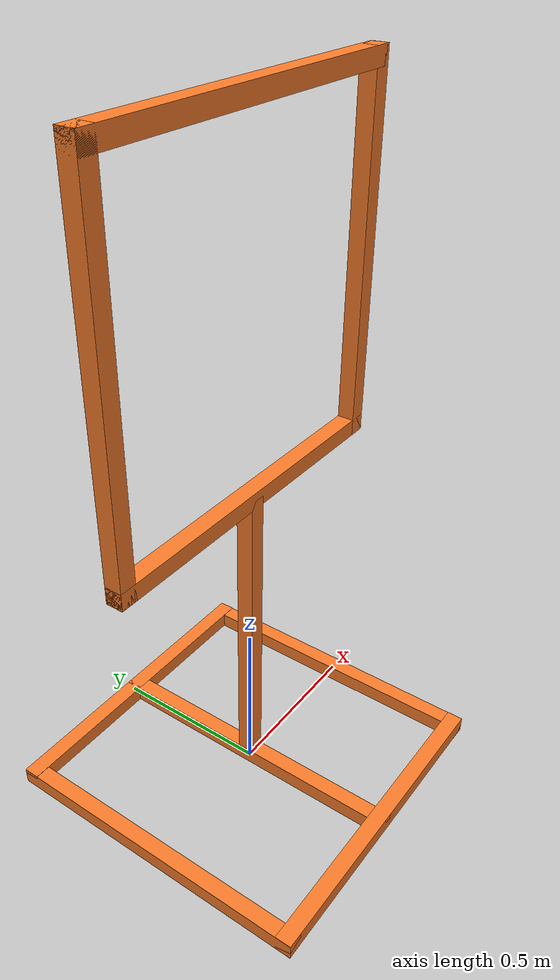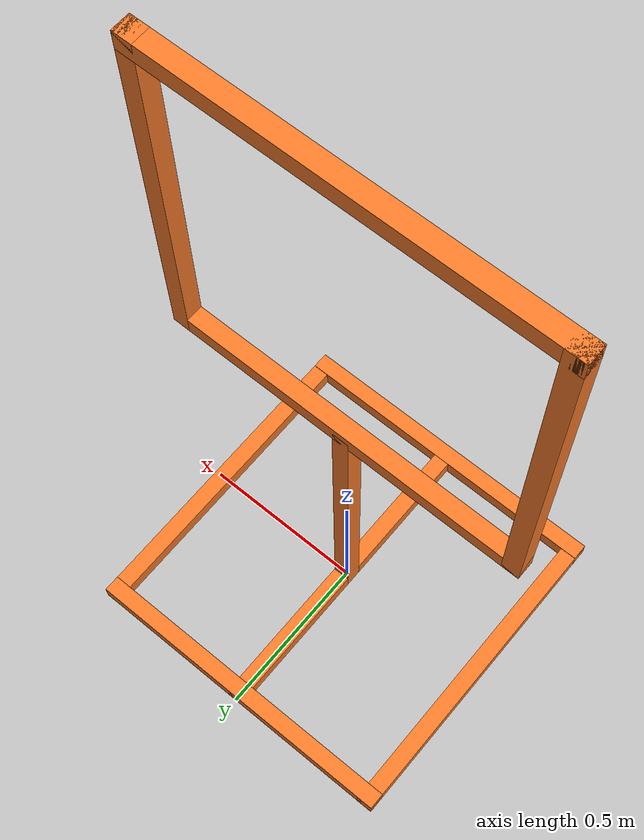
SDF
<?xml version='1.0'?>
<sdf version='1.6'>
  <model name='TMR_Gate'>
    <link name='link'>
      <pose frame=''>0 0 0.5 0 -0 0</pose>
      <inertial>
        <mass>1</mass>
        <inertia>
          <ixx>0.166667</ixx>
          <ixy>0</ixy>
          <ixz>0</ixz>
          <iyy>0.166667</iyy>
          <iyz>0</iyz>
          <izz>0.166667</izz>
        </inertia>
        <pose frame=''>0 0 0 0 -0 0</pose>
      </inertial>
      <self_collide>0</self_collide>
      <kinematic>0</kinematic>
      <gravity>1</gravity>
      <enable_wind>0</enable_wind>
      <visual name='visual'>
        <geometry>
          <box>
            <size>0.05 0.05 1</size>
          </box>
        </geometry>
        <material>
          <script>
            <name>Gazebo/Grey</name>
            <uri>file://media/materials/scripts/gazebo.material</uri>
          </script>
          <shader type='vertex'>
            <normal_map>__default__</normal_map>
          </shader>
          <ambient>0.976 0.484 0.164 1</ambient>
          <diffuse>0.976 0.484 0.164 1</diffuse>
          <specular>0.01 0.01 0.01 1</specular>
          <emissive>0 0 0 1</emissive>
        </material>
        <pose frame=''>0 0 0 0 -0 0</pose>
        <transparency>0</transparency>
        <cast_shadows>1</cast_shadows>
      </visual>
      <collision name='collision'>
        <laser_retro>0</laser_retro>
        <max_contacts>10</max_contacts>
        <pose frame=''>0 0 0 0 -0 0</pose>
        <geometry>
          <box>
            <size>0.05 0.05 1</size>
          </box>
        </geometry>
        <surface>
          <friction>
            <ode>
              <mu>1</mu>
              <mu2>1</mu2>
              <fdir1>0 0 0</fdir1>
              <slip1>0</slip1>
              <slip2>0</slip2>
            </ode>
            <torsional>
              <coefficient>1</coefficient>
              <patch_radius>0</patch_radius>
              <surface_radius>0</surface_radius>
              <use_patch_radius>1</use_patch_radius>
              <ode>
                <slip>0</slip>
              </ode>
            </torsional>
          </friction>
          <bounce>
            <restitution_coefficient>0</restitution_coefficient>
            <threshold>1e+06</threshold>
          </bounce>
          <contact>
            <collide_without_contact>0</collide_without_contact>
            <collide_without_contact_bitmask>1</collide_without_contact_bitmask>
            <collide_bitmask>1</collide_bitmask>
            <ode>
              <soft_cfm>0</soft_cfm>
              <soft_erp>0.2</soft_erp>
              <kp>1e+13</kp>
              <kd>1</kd>
              <max_vel>0.01</max_vel>
              <min_depth>0</min_depth>
            </ode>
            <bullet>
              <split_impulse>1</split_impulse>
              <split_impulse_penetration_threshold>-0.01</split_impulse_penetration_threshold>
              <soft_cfm>0</soft_cfm>
              <soft_erp>0.2</soft_erp>
              <kp>1e+13</kp>
              <kd>1</kd>
            </bullet>
          </contact>
        </surface>
      </collision>
    </link>
    <link name='link_10'>
      <pose frame=''>0.5 0 0.8 0 -0 0</pose>
      <inertial>
        <mass>1</mass>
        <inertia>
          <ixx>0.166667</ixx>
          <ixy>0</ixy>
          <ixz>0</ixz>
          <iyy>0.166667</iyy>
          <iyz>0</iyz>
          <izz>0.166667</izz>
        </inertia>
        <pose frame=''>0 0 0 0 -0 0</pose>
      </inertial>
      <self_collide>0</self_collide>
      <kinematic>0</kinematic>
      <gravity>1</gravity>
      <enable_wind>0</enable_wind>
      <visual name='visual'>
        <geometry>
          <box>
            <size>0.05 0.05 1.05</size>
          </box>
        </geometry>
        <material>
          <script>
            <name>Gazebo/Grey</name>
            <uri>file://media/materials/scripts/gazebo.material</uri>
          </script>
          <shader type='vertex'>
            <normal_map>__default__</normal_map>
          </shader>
          <ambient>0.976 0.484 0.164 1</ambient>
          <diffuse>0.976 0.484 0.164 1</diffuse>
          <specular>0.01 0.01 0.01 1</specular>
          <emissive>0 0 0 1</emissive>
        </material>
        <pose frame=''>0 0 0.7 0 -0 0</pose>
        <transparency>0</transparency>
        <cast_shadows>1</cast_shadows>
      </visual>
      <collision name='collision'>
        <laser_retro>0</laser_retro>
        <max_contacts>10</max_contacts>
        <pose frame=''>0 0 0.7 0 -0 0</pose>
        <geometry>
          <box>
            <size>0.05 0.05 1.05</size>
          </box>
        </geometry>
        <surface>
          <friction>
            <ode>
              <mu>1</mu>
              <mu2>1</mu2>
              <fdir1>0 0 0</fdir1>
              <slip1>0</slip1>
              <slip2>0</slip2>
            </ode>
            <torsional>
              <coefficient>1</coefficient>
              <patch_radius>0</patch_radius>
              <surface_radius>0</surface_radius>
              <use_patch_radius>1</use_patch_radius>
              <ode>
                <slip>0</slip>
              </ode>
            </torsional>
          </friction>
          <bounce>
            <restitution_coefficient>0</restitution_coefficient>
            <threshold>1e+06</threshold>
          </bounce>
          <contact>
            <collide_without_contact>0</collide_without_contact>
            <collide_without_contact_bitmask>1</collide_without_contact_bitmask>
            <collide_bitmask>1</collide_bitmask>
            <ode>
              <soft_cfm>0</soft_cfm>
              <soft_erp>0.2</soft_erp>
              <kp>1e+13</kp>
              <kd>1</kd>
              <max_vel>0.01</max_vel>
              <min_depth>0</min_depth>
            </ode>
            <bullet>
              <split_impulse>1</split_impulse>
              <split_impulse_penetration_threshold>-0.01</split_impulse_penetration_threshold>
              <soft_cfm>0</soft_cfm>
              <soft_erp>0.2</soft_erp>
              <kp>1e+13</kp>
              <kd>1</kd>
            </bullet>
          </contact>
        </surface>
      </collision>
    </link>
    <link name='link_2'>
      <pose frame=''>0 0 0.025 0 -0 0</pose>
      <inertial>
        <mass>1</mass>
        <inertia>
          <ixx>0.166667</ixx>
          <ixy>0</ixy>
          <ixz>0</ixz>
          <iyy>0.166667</iyy>
          <iyz>0</iyz>
          <izz>0.166667</izz>
        </inertia>
        <pose frame=''>0 0 0 0 -0 0</pose>
      </inertial>
      <self_collide>0</self_collide>
      <kinematic>0</kinematic>
      <gravity>1</gravity>
      <enable_wind>0</enable_wind>
      <visual name='visual'>
        <geometry>
          <box>
            <size>0.05 1 0.05</size>
          </box>
        </geometry>
        <material>
          <script>
            <name>Gazebo/Grey</name>
            <uri>file://media/materials/scripts/gazebo.material</uri>
          </script>
          <shader type='vertex'>
            <normal_map>__default__</normal_map>
          </shader>
          <ambient>0.976 0.484 0.164 1</ambient>
          <diffuse>0.976 0.484 0.164 1</diffuse>
          <specular>0.01 0.01 0.01 1</specular>
          <emissive>0 0 0 1</emissive>
        </material>
        <pose frame=''>0 0 0 0 -0 0</pose>
        <transparency>0</transparency>
        <cast_shadows>1</cast_shadows>
      </visual>
      <collision name='collision'>
        <laser_retro>0</laser_retro>
        <max_contacts>10</max_contacts>
        <pose frame=''>0 0 0 0 -0 0</pose>
        <geometry>
          <box>
            <size>0.05 1 0.05</size>
          </box>
        </geometry>
        <surface>
          <friction>
            <ode>
              <mu>1</mu>
              <mu2>1</mu2>
              <fdir1>0 0 0</fdir1>
              <slip1>0</slip1>
              <slip2>0</slip2>
            </ode>
            <torsional>
              <coefficient>1</coefficient>
              <patch_radius>0</patch_radius>
              <surface_radius>0</surface_radius>
              <use_patch_radius>1</use_patch_radius>
              <ode>
                <slip>0</slip>
              </ode>
            </torsional>
          </friction>
          <bounce>
            <restitution_coefficient>0</restitution_coefficient>
            <threshold>1e+06</threshold>
          </bounce>
          <contact>
            <collide_without_contact>0</collide_without_contact>
            <collide_without_contact_bitmask>1</collide_without_contact_bitmask>
            <collide_bitmask>1</collide_bitmask>
            <ode>
              <soft_cfm>0</soft_cfm>
              <soft_erp>0.2</soft_erp>
              <kp>1e+13</kp>
              <kd>1</kd>
              <max_vel>0.01</max_vel>
              <min_depth>0</min_depth>
            </ode>
            <bullet>
              <split_impulse>1</split_impulse>
              <split_impulse_penetration_threshold>-0.01</split_impulse_penetration_threshold>
              <soft_cfm>0</soft_cfm>
              <soft_erp>0.2</soft_erp>
              <kp>1e+13</kp>
              <kd>1</kd>
            </bullet>
          </contact>
        </surface>
      </collision>
    </link>
    <link name='link_3'>
      <pose frame=''>0.475 0 0.024 0 -0 0</pose>
      <inertial>
        <mass>1</mass>
        <inertia>
          <ixx>0.166667</ixx>
          <ixy>0</ixy>
          <ixz>0</ixz>
          <iyy>0.166667</iyy>
          <iyz>0</iyz>
          <izz>0.166667</izz>
        </inertia>
        <pose frame=''>0 0 0 0 -0 0</pose>
      </inertial>
      <self_collide>0</self_collide>
      <kinematic>0</kinematic>
      <gravity>1</gravity>
      <enable_wind>0</enable_wind>
      <visual name='visual'>
        <geometry>
          <box>
            <size>0.05 1 0.05</size>
          </box>
        </geometry>
        <material>
          <script>
            <name>Gazebo/Grey</name>
            <uri>file://media/materials/scripts/gazebo.material</uri>
          </script>
          <shader type='vertex'>
            <normal_map>__default__</normal_map>
          </shader>
          <ambient>0.976 0.484 0.164 1</ambient>
          <diffuse>0.976 0.484 0.164 1</diffuse>
          <specular>0.01 0.01 0.01 1</specular>
          <emissive>0 0 0 1</emissive>
        </material>
        <pose frame=''>0 0 0 0 -0 0</pose>
        <transparency>0</transparency>
        <cast_shadows>1</cast_shadows>
      </visual>
      <collision name='collision'>
        <laser_retro>0</laser_retro>
        <max_contacts>10</max_contacts>
        <pose frame=''>0 0 0 0 -0 0</pose>
        <geometry>
          <box>
            <size>0.05 1 0.05</size>
          </box>
        </geometry>
        <surface>
          <friction>
            <ode>
              <mu>1</mu>
              <mu2>1</mu2>
              <fdir1>0 0 0</fdir1>
              <slip1>0</slip1>
              <slip2>0</slip2>
            </ode>
            <torsional>
              <coefficient>1</coefficient>
              <patch_radius>0</patch_radius>
              <surface_radius>0</surface_radius>
              <use_patch_radius>1</use_patch_radius>
              <ode>
                <slip>0</slip>
              </ode>
            </torsional>
          </friction>
          <bounce>
            <restitution_coefficient>0</restitution_coefficient>
            <threshold>1e+06</threshold>
          </bounce>
          <contact>
            <collide_without_contact>0</collide_without_contact>
            <collide_without_contact_bitmask>1</collide_without_contact_bitmask>
            <collide_bitmask>1</collide_bitmask>
            <ode>
              <soft_cfm>0</soft_cfm>
              <soft_erp>0.2</soft_erp>
              <kp>1e+13</kp>
              <kd>1</kd>
              <max_vel>0.01</max_vel>
              <min_depth>0</min_depth>
            </ode>
            <bullet>
              <split_impulse>1</split_impulse>
              <split_impulse_penetration_threshold>-0.01</split_impulse_penetration_threshold>
              <soft_cfm>0</soft_cfm>
              <soft_erp>0.2</soft_erp>
              <kp>1e+13</kp>
              <kd>1</kd>
            </bullet>
          </contact>
        </surface>
      </collision>
    </link>
    <link name='link_4'>
      <pose frame=''>-0.475 -0 0.024 0 -0 0</pose>
      <inertial>
        <mass>1</mass>
        <inertia>
          <ixx>0.166667</ixx>
          <ixy>0</ixy>
          <ixz>0</ixz>
          <iyy>0.166667</iyy>
          <iyz>0</iyz>
          <izz>0.166667</izz>
        </inertia>
        <pose frame=''>0 0 0 0 -0 0</pose>
      </inertial>
      <self_collide>0</self_collide>
      <kinematic>0</kinematic>
      <gravity>1</gravity>
      <enable_wind>0</enable_wind>
      <visual name='visual'>
        <geometry>
          <box>
            <size>0.05 1 0.05</size>
          </box>
        </geometry>
        <material>
          <script>
            <name>Gazebo/Grey</name>
            <uri>file://media/materials/scripts/gazebo.material</uri>
          </script>
          <shader type='vertex'>
            <normal_map>__default__</normal_map>
          </shader>
          <ambient>0.976 0.484 0.164 1</ambient>
          <diffuse>0.976 0.484 0.164 1</diffuse>
          <specular>0.01 0.01 0.01 1</specular>
          <emissive>0 0 0 1</emissive>
        </material>
        <pose frame=''>0 0 0 0 -0 0</pose>
        <transparency>0</transparency>
        <cast_shadows>1</cast_shadows>
      </visual>
      <collision name='collision'>
        <laser_retro>0</laser_retro>
        <max_contacts>10</max_contacts>
        <pose frame=''>0 0 0 0 -0 0</pose>
        <geometry>
          <box>
            <size>0.05 1 0.05</size>
          </box>
        </geometry>
        <surface>
          <friction>
            <ode>
              <mu>1</mu>
              <mu2>1</mu2>
              <fdir1>0 0 0</fdir1>
              <slip1>0</slip1>
              <slip2>0</slip2>
            </ode>
            <torsional>
              <coefficient>1</coefficient>
              <patch_radius>0</patch_radius>
              <surface_radius>0</surface_radius>
              <use_patch_radius>1</use_patch_radius>
              <ode>
                <slip>0</slip>
              </ode>
            </torsional>
          </friction>
          <bounce>
            <restitution_coefficient>0</restitution_coefficient>
            <threshold>1e+06</threshold>
          </bounce>
          <contact>
            <collide_without_contact>0</collide_without_contact>
            <collide_without_contact_bitmask>1</collide_without_contact_bitmask>
            <collide_bitmask>1</collide_bitmask>
            <ode>
              <soft_cfm>0</soft_cfm>
              <soft_erp>0.2</soft_erp>
              <kp>1e+13</kp>
              <kd>1</kd>
              <max_vel>0.01</max_vel>
              <min_depth>0</min_depth>
            </ode>
            <bullet>
              <split_impulse>1</split_impulse>
              <split_impulse_penetration_threshold>-0.01</split_impulse_penetration_threshold>
              <soft_cfm>0</soft_cfm>
              <soft_erp>0.2</soft_erp>
              <kp>1e+13</kp>
              <kd>1</kd>
            </bullet>
          </contact>
        </surface>
      </collision>
    </link>
    <link name='link_5'>
      <pose frame=''>0 0.475 0.025 0 -0 0</pose>
      <inertial>
        <mass>1</mass>
        <inertia>
          <ixx>0.166667</ixx>
          <ixy>0</ixy>
          <ixz>0</ixz>
          <iyy>0.166667</iyy>
          <iyz>0</iyz>
          <izz>0.166667</izz>
        </inertia>
        <pose frame=''>0 0 0 0 -0 0</pose>
      </inertial>
      <self_collide>0</self_collide>
      <kinematic>0</kinematic>
      <gravity>1</gravity>
      <enable_wind>0</enable_wind>
      <visual name='visual'>
        <geometry>
          <box>
            <size>1 0.05 0.05</size>
          </box>
        </geometry>
        <material>
          <script>
            <name>Gazebo/Grey</name>
            <uri>file://media/materials/scripts/gazebo.material</uri>
          </script>
          <shader type='vertex'>
            <normal_map>__default__</normal_map>
          </shader>
          <ambient>0.976 0.484 0.164 1</ambient>
          <diffuse>0.976 0.484 0.164 1</diffuse>
          <specular>0.01 0.01 0.01 1</specular>
          <emissive>0 0 0 1</emissive>
        </material>
        <pose frame=''>0 0 0 0 -0 0</pose>
        <transparency>0</transparency>
        <cast_shadows>1</cast_shadows>
      </visual>
      <collision name='collision'>
        <laser_retro>0</laser_retro>
        <max_contacts>10</max_contacts>
        <pose frame=''>0 0 0 0 -0 0</pose>
        <geometry>
          <box>
            <size>1 0.05 0.05</size>
          </box>
        </geometry>
        <surface>
          <friction>
            <ode>
              <mu>1</mu>
              <mu2>1</mu2>
              <fdir1>0 0 0</fdir1>
              <slip1>0</slip1>
              <slip2>0</slip2>
            </ode>
            <torsional>
              <coefficient>1</coefficient>
              <patch_radius>0</patch_radius>
              <surface_radius>0</surface_radius>
              <use_patch_radius>1</use_patch_radius>
              <ode>
                <slip>0</slip>
              </ode>
            </torsional>
          </friction>
          <bounce>
            <restitution_coefficient>0</restitution_coefficient>
            <threshold>1e+06</threshold>
          </bounce>
          <contact>
            <collide_without_contact>0</collide_without_contact>
            <collide_without_contact_bitmask>1</collide_without_contact_bitmask>
            <collide_bitmask>1</collide_bitmask>
            <ode>
              <soft_cfm>0</soft_cfm>
              <soft_erp>0.2</soft_erp>
              <kp>1e+13</kp>
              <kd>1</kd>
              <max_vel>0.01</max_vel>
              <min_depth>0</min_depth>
            </ode>
            <bullet>
              <split_impulse>1</split_impulse>
              <split_impulse_penetration_threshold>-0.01</split_impulse_penetration_threshold>
              <soft_cfm>0</soft_cfm>
              <soft_erp>0.2</soft_erp>
              <kp>1e+13</kp>
              <kd>1</kd>
            </bullet>
          </contact>
        </surface>
      </collision>
    </link>
    <link name='link_6'>
      <pose frame=''>-0 -0.475 0.025 0 -0 0</pose>
      <inertial>
        <mass>1</mass>
        <inertia>
          <ixx>0.166667</ixx>
          <ixy>0</ixy>
          <ixz>0</ixz>
          <iyy>0.166667</iyy>
          <iyz>0</iyz>
          <izz>0.166667</izz>
        </inertia>
        <pose frame=''>0 0 0 0 -0 0</pose>
      </inertial>
      <self_collide>0</self_collide>
      <kinematic>0</kinematic>
      <gravity>1</gravity>
      <enable_wind>0</enable_wind>
      <visual name='visual'>
        <geometry>
          <box>
            <size>1 0.05 0.05</size>
          </box>
        </geometry>
        <material>
          <script>
            <name>Gazebo/Grey</name>
            <uri>file://media/materials/scripts/gazebo.material</uri>
          </script>
          <shader type='vertex'>
            <normal_map>__default__</normal_map>
          </shader>
          <ambient>0.976 0.484 0.164 1</ambient>
          <diffuse>0.976 0.484 0.164 1</diffuse>
          <specular>0.01 0.01 0.01 1</specular>
          <emissive>0 0 0 1</emissive>
        </material>
        <pose frame=''>0 0 0 0 -0 0</pose>
        <transparency>0</transparency>
        <cast_shadows>1</cast_shadows>
      </visual>
      <collision name='collision'>
        <laser_retro>0</laser_retro>
        <max_contacts>10</max_contacts>
        <pose frame=''>0 0 0 0 -0 0</pose>
        <geometry>
          <box>
            <size>1 0.05 0.05</size>
          </box>
        </geometry>
        <surface>
          <friction>
            <ode>
              <mu>1</mu>
              <mu2>1</mu2>
              <fdir1>0 0 0</fdir1>
              <slip1>0</slip1>
              <slip2>0</slip2>
            </ode>
            <torsional>
              <coefficient>1</coefficient>
              <patch_radius>0</patch_radius>
              <surface_radius>0</surface_radius>
              <use_patch_radius>1</use_patch_radius>
              <ode>
                <slip>0</slip>
              </ode>
            </torsional>
          </friction>
          <bounce>
            <restitution_coefficient>0</restitution_coefficient>
            <threshold>1e+06</threshold>
          </bounce>
          <contact>
            <collide_without_contact>0</collide_without_contact>
            <collide_without_contact_bitmask>1</collide_without_contact_bitmask>
            <collide_bitmask>1</collide_bitmask>
            <ode>
              <soft_cfm>0</soft_cfm>
              <soft_erp>0.2</soft_erp>
              <kp>1e+13</kp>
              <kd>1</kd>
              <max_vel>0.01</max_vel>
              <min_depth>0</min_depth>
            </ode>
            <bullet>
              <split_impulse>1</split_impulse>
              <split_impulse_penetration_threshold>-0.01</split_impulse_penetration_threshold>
              <soft_cfm>0</soft_cfm>
              <soft_erp>0.2</soft_erp>
              <kp>1e+13</kp>
              <kd>1</kd>
            </bullet>
          </contact>
        </surface>
      </collision>
    </link>
    <link name='link_7'>
      <pose frame=''>0 0 2 0 -0 0</pose>
      <inertial>
        <mass>1</mass>
        <inertia>
          <ixx>0.166667</ixx>
          <ixy>0</ixy>
          <ixz>0</ixz>
          <iyy>0.166667</iyy>
          <iyz>0</iyz>
          <izz>0.166667</izz>
        </inertia>
        <pose frame=''>0 0 0 0 -0 0</pose>
      </inertial>
      <self_collide>0</self_collide>
      <kinematic>0</kinematic>
      <gravity>1</gravity>
      <enable_wind>0</enable_wind>
      <visual name='visual'>
        <geometry>
          <box>
            <size>1.05 0.05 0.05</size>
          </box>
        </geometry>
        <material>
          <script>
            <name>Gazebo/Grey</name>
            <uri>file://media/materials/scripts/gazebo.material</uri>
          </script>
          <shader type='vertex'>
            <normal_map>__default__</normal_map>
          </shader>
          <ambient>0.976 0.484 0.164 1</ambient>
          <diffuse>0.976 0.484 0.164 1</diffuse>
          <specular>0.01 0.01 0.01 1</specular>
          <emissive>0 0 0 1</emissive>
        </material>
        <pose frame=''>0 0 0 0 -0 0</pose>
        <transparency>0</transparency>
        <cast_shadows>1</cast_shadows>
      </visual>
      <collision name='collision'>
        <laser_retro>0</laser_retro>
        <max_contacts>10</max_contacts>
        <pose frame=''>0 0 0 0 -0 0</pose>
        <geometry>
          <box>
            <size>1.05 0.05 0.05</size>
          </box>
        </geometry>
        <surface>
          <friction>
            <ode>
              <mu>1</mu>
              <mu2>1</mu2>
              <fdir1>0 0 0</fdir1>
              <slip1>0</slip1>
              <slip2>0</slip2>
            </ode>
            <torsional>
              <coefficient>1</coefficient>
              <patch_radius>0</patch_radius>
              <surface_radius>0</surface_radius>
              <use_patch_radius>1</use_patch_radius>
              <ode>
                <slip>0</slip>
              </ode>
            </torsional>
          </friction>
          <bounce>
            <restitution_coefficient>0</restitution_coefficient>
            <threshold>1e+06</threshold>
          </bounce>
          <contact>
            <collide_without_contact>0</collide_without_contact>
            <collide_without_contact_bitmask>1</collide_without_contact_bitmask>
            <collide_bitmask>1</collide_bitmask>
            <ode>
              <soft_cfm>0</soft_cfm>
              <soft_erp>0.2</soft_erp>
              <kp>1e+13</kp>
              <kd>1</kd>
              <max_vel>0.01</max_vel>
              <min_depth>0</min_depth>
            </ode>
            <bullet>
              <split_impulse>1</split_impulse>
              <split_impulse_penetration_threshold>-0.01</split_impulse_penetration_threshold>
              <soft_cfm>0</soft_cfm>
              <soft_erp>0.2</soft_erp>
              <kp>1e+13</kp>
              <kd>1</kd>
            </bullet>
          </contact>
        </surface>
      </collision>
    </link>
    <link name='link_8'>
      <pose frame=''>0 0 1 0 -0 0</pose>
      <inertial>
        <mass>1</mass>
        <inertia>
          <ixx>0.166667</ixx>
          <ixy>0</ixy>
          <ixz>0</ixz>
          <iyy>0.166667</iyy>
          <iyz>0</iyz>
          <izz>0.166667</izz>
        </inertia>
        <pose frame=''>0 0 0 0 -0 0</pose>
      </inertial>
      <self_collide>0</self_collide>
      <kinematic>0</kinematic>
      <gravity>1</gravity>
      <enable_wind>0</enable_wind>
      <visual name='visual'>
        <geometry>
          <box>
            <size>1.05 0.05 0.05</size>
          </box>
        </geometry>
        <material>
          <script>
            <name>Gazebo/Grey</name>
            <uri>file://media/materials/scripts/gazebo.material</uri>
          </script>
          <shader type='vertex'>
            <normal_map>__default__</normal_map>
          </shader>
          <ambient>0.976 0.484 0.164 1</ambient>
          <diffuse>0.976 0.484 0.164 1</diffuse>
          <specular>0.01 0.01 0.01 1</specular>
          <emissive>0 0 0 1</emissive>
        </material>
        <pose frame=''>0 0 0 0 -0 0</pose>
        <transparency>0</transparency>
        <cast_shadows>1</cast_shadows>
      </visual>
      <collision name='collision'>
        <laser_retro>0</laser_retro>
        <max_contacts>10</max_contacts>
        <pose frame=''>0 0 0 0 -0 0</pose>
        <geometry>
          <box>
            <size>1.05 0.05 0.05</size>
          </box>
        </geometry>
        <surface>
          <friction>
            <ode>
              <mu>1</mu>
              <mu2>1</mu2>
              <fdir1>0 0 0</fdir1>
              <slip1>0</slip1>
              <slip2>0</slip2>
            </ode>
            <torsional>
              <coefficient>1</coefficient>
              <patch_radius>0</patch_radius>
              <surface_radius>0</surface_radius>
              <use_patch_radius>1</use_patch_radius>
              <ode>
                <slip>0</slip>
              </ode>
            </torsional>
          </friction>
          <bounce>
            <restitution_coefficient>0</restitution_coefficient>
            <threshold>1e+06</threshold>
          </bounce>
          <contact>
            <collide_without_contact>0</collide_without_contact>
            <collide_without_contact_bitmask>1</collide_without_contact_bitmask>
            <collide_bitmask>1</collide_bitmask>
            <ode>
              <soft_cfm>0</soft_cfm>
              <soft_erp>0.2</soft_erp>
              <kp>1e+13</kp>
              <kd>1</kd>
              <max_vel>0.01</max_vel>
              <min_depth>0</min_depth>
            </ode>
            <bullet>
              <split_impulse>1</split_impulse>
              <split_impulse_penetration_threshold>-0.01</split_impulse_penetration_threshold>
              <soft_cfm>0</soft_cfm>
              <soft_erp>0.2</soft_erp>
              <kp>1e+13</kp>
              <kd>1</kd>
            </bullet>
          </contact>
        </surface>
      </collision>
    </link>
    <link name='link_9'>
      <pose frame=''>-0.5 -0 0.8 0 -0 0</pose>
      <inertial>
        <mass>1</mass>
        <inertia>
          <ixx>0.166667</ixx>
          <ixy>0</ixy>
          <ixz>0</ixz>
          <iyy>0.166667</iyy>
          <iyz>0</iyz>
          <izz>0.166667</izz>
        </inertia>
        <pose frame=''>0 0 0 0 -0 0</pose>
      </inertial>
      <self_collide>0</self_collide>
      <kinematic>0</kinematic>
      <gravity>1</gravity>
      <enable_wind>0</enable_wind>
      <visual name='visual'>
        <geometry>
          <box>
            <size>0.05 0.05 1.05</size>
          </box>
        </geometry>
        <material>
          <script>
            <name>Gazebo/Grey</name>
            <uri>file://media/materials/scripts/gazebo.material</uri>
          </script>
          <shader type='vertex'>
            <normal_map>__default__</normal_map>
          </shader>
          <ambient>0.976 0.484 0.164 1</ambient>
          <diffuse>0.976 0.484 0.164 1</diffuse>
          <specular>0.01 0.01 0.01 1</specular>
          <emissive>0 0 0 1</emissive>
        </material>
        <pose frame=''>0 0 0.7 0 -0 0</pose>
        <transparency>0</transparency>
        <cast_shadows>1</cast_shadows>
      </visual>
      <collision name='collision'>
        <laser_retro>0</laser_retro>
        <max_contacts>10</max_contacts>
        <pose frame=''>0 0 0.7 0 -0 0</pose>
        <geometry>
          <box>
            <size>0.05 0.05 1.05</size>
          </box>
        </geometry>
        <surface>
          <friction>
            <ode>
              <mu>1</mu>
              <mu2>1</mu2>
              <fdir1>0 0 0</fdir1>
              <slip1>0</slip1>
              <slip2>0</slip2>
            </ode>
            <torsional>
              <coefficient>1</coefficient>
              <patch_radius>0</patch_radius>
              <surface_radius>0</surface_radius>
              <use_patch_radius>1</use_patch_radius>
              <ode>
                <slip>0</slip>
              </ode>
            </torsional>
          </friction>
          <bounce>
            <restitution_coefficient>0</restitution_coefficient>
            <threshold>1e+06</threshold>
          </bounce>
          <contact>
            <collide_without_contact>0</collide_without_contact>
            <collide_without_contact_bitmask>1</collide_without_contact_bitmask>
            <collide_bitmask>1</collide_bitmask>
            <ode>
              <soft_cfm>0</soft_cfm>
              <soft_erp>0.2</soft_erp>
              <kp>1e+13</kp>
              <kd>1</kd>
              <max_vel>0.01</max_vel>
              <min_depth>0</min_depth>
            </ode>
            <bullet>
              <split_impulse>1</split_impulse>
              <split_impulse_penetration_threshold>-0.01</split_impulse_penetration_threshold>
              <soft_cfm>0</soft_cfm>
              <soft_erp>0.2</soft_erp>
              <kp>1e+13</kp>
              <kd>1</kd>
            </bullet>
          </contact>
        </surface>
      </collision>
    </link>
    <static>1</static>
    <allow_auto_disable>1</allow_auto_disable>
  </model>
</sdf>
